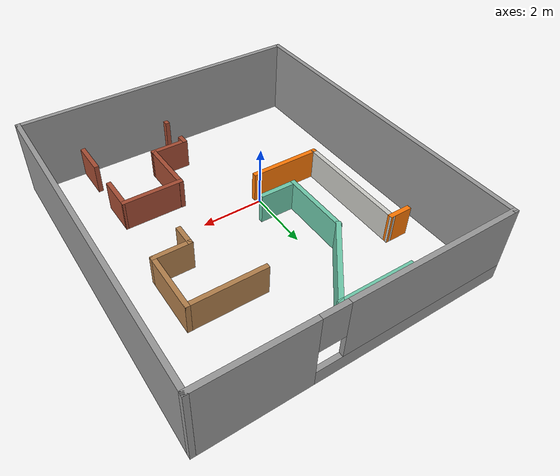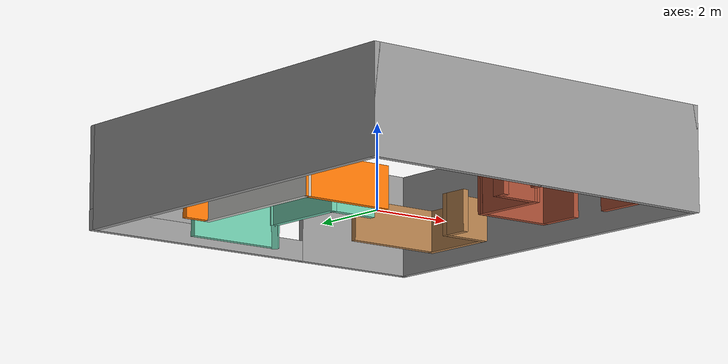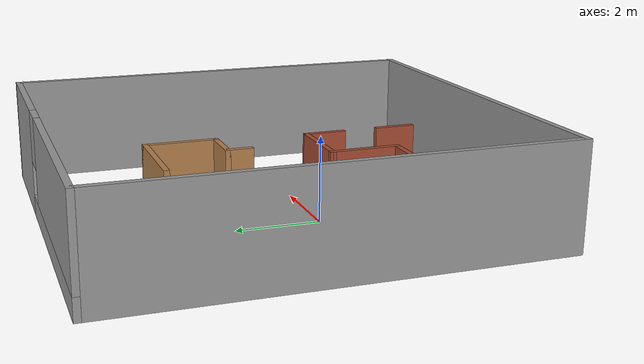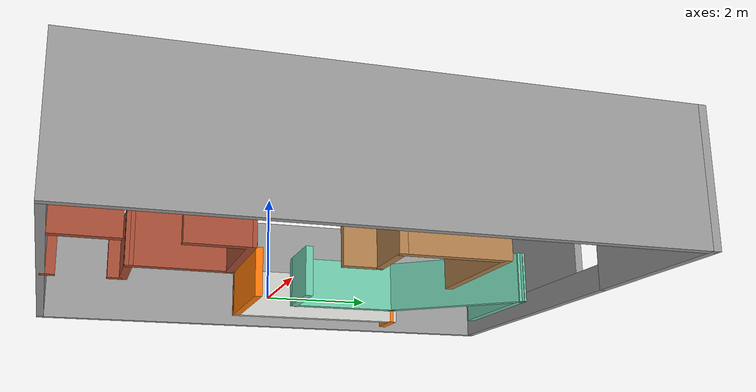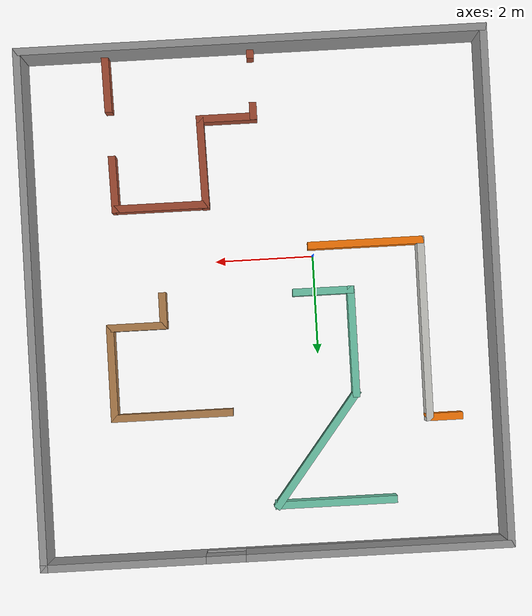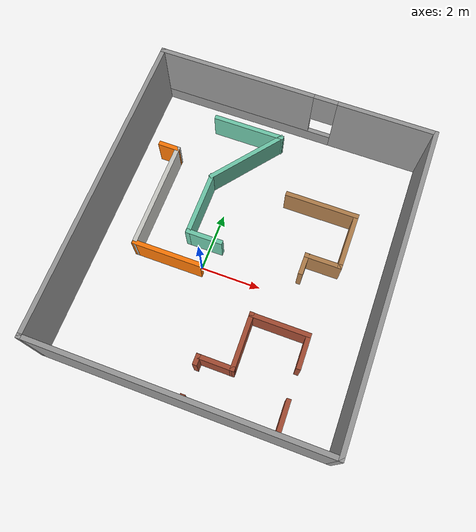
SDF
<?xml version='1.0'?>
<sdf version='1.6'>
  <model name='closer'>
    <pose frame=''>1.0586 0.824304 0 0 -0 0</pose>
    <link name='Wall_10'>
      <collision name='Wall_10_Collision'>
        <geometry>
          <box>
            <size>2.27906 0.15 1</size>
          </box>
        </geometry>
        <pose frame=''>0 0 0.5 0 -0 0</pose>
      </collision>
      <visual name='Wall_10_Visual'>
        <pose frame=''>0 0 0.5 0 -0 0</pose>
        <geometry>
          <box>
            <size>2.27906 0.15 1</size>
          </box>
        </geometry>
        <material>
          <script>
            <uri>file://media/materials/scripts/gazebo.material</uri>
            <name>Gazebo/Grey</name>
          </script>
          <ambient>0.435294 0.796078 0.67451 1</ambient>
        </material>
        <meta>
          <layer>0</layer>
        </meta>
      </visual>
      <pose frame=''>-1.7886 0.973356 0 0 0 -1.5708</pose>
    </link>
    <link name='Wall_11'>
      <collision name='Wall_11_Collision'>
        <geometry>
          <box>
            <size>1.25 0.15 1</size>
          </box>
        </geometry>
        <pose frame=''>0 0 0.5 0 -0 0</pose>
      </collision>
      <visual name='Wall_11_Visual'>
        <pose frame=''>0 0 0.5 0 -0 0</pose>
        <geometry>
          <box>
            <size>1.25 0.15 1</size>
          </box>
        </geometry>
        <material>
          <script>
            <uri>file://media/materials/scripts/gazebo.material</uri>
            <name>Gazebo/Grey</name>
          </script>
          <ambient>0.435294 0.796078 0.67451 1</ambient>
        </material>
        <meta>
          <layer>0</layer>
        </meta>
      </visual>
      <pose frame=''>-1.22522 -0.090985 0 0 -0 0</pose>
    </link>
    <link name='Wall_13'>
      <collision name='Wall_13_Collision'>
        <geometry>
          <box>
            <size>2.5 0.15 1</size>
          </box>
        </geometry>
        <pose frame=''>0 0 0.5 0 -0 0</pose>
      </collision>
      <visual name='Wall_13_Visual'>
        <pose frame=''>0 0 0.5 0 -0 0</pose>
        <geometry>
          <box>
            <size>2.5 0.15 1</size>
          </box>
        </geometry>
        <material>
          <script>
            <uri>file://media/materials/scripts/gazebo.material</uri>
            <name>Gazebo/Wood</name>
          </script>
          <ambient>1 1 1 1</ambient>
        </material>
        <meta>
          <layer>0</layer>
        </meta>
      </visual>
      <pose frame=''>1.9954 2.2857 0 0 -0 0</pose>
    </link>
    <link name='Wall_14'>
      <collision name='Wall_14_Collision'>
        <geometry>
          <box>
            <size>2 0.15 1</size>
          </box>
        </geometry>
        <pose frame=''>0 0 0.5 0 -0 0</pose>
      </collision>
      <visual name='Wall_14_Visual'>
        <pose frame=''>0 0 0.5 0 -0 0</pose>
        <geometry>
          <box>
            <size>2 0.15 1</size>
          </box>
        </geometry>
        <material>
          <script>
            <uri>file://media/materials/scripts/gazebo.material</uri>
            <name>Gazebo/Wood</name>
          </script>
          <ambient>1 1 1 1</ambient>
        </material>
        <meta>
          <layer>0</layer>
        </meta>
      </visual>
      <pose frame=''>3.1704 1.3607 0 0 0 -1.5708</pose>
    </link>
    <link name='Wall_15'>
      <collision name='Wall_15_Collision'>
        <geometry>
          <box>
            <size>1.25 0.15 1</size>
          </box>
        </geometry>
        <pose frame=''>0 0 0.5 0 -0 0</pose>
      </collision>
      <visual name='Wall_15_Visual'>
        <pose frame=''>0 0 0.5 0 -0 0</pose>
        <geometry>
          <box>
            <size>1.25 0.15 1</size>
          </box>
        </geometry>
        <material>
          <script>
            <uri>file://media/materials/scripts/gazebo.material</uri>
            <name>Gazebo/Wood</name>
          </script>
          <ambient>1 1 1 1</ambient>
        </material>
        <meta>
          <layer>0</layer>
        </meta>
      </visual>
      <pose frame=''>2.6204 0.435696 0 0 -0 3.14159</pose>
    </link>
    <link name='Wall_16'>
      <collision name='Wall_16_Collision'>
        <geometry>
          <box>
            <size>0.75 0.15 1</size>
          </box>
        </geometry>
        <pose frame=''>0 0 0.5 0 -0 0</pose>
      </collision>
      <visual name='Wall_16_Visual'>
        <pose frame=''>0 0 0.5 0 -0 0</pose>
        <geometry>
          <box>
            <size>0.75 0.15 1</size>
          </box>
        </geometry>
        <material>
          <script>
            <uri>file://media/materials/scripts/gazebo.material</uri>
            <name>Gazebo/Wood</name>
          </script>
          <ambient>1 1 1 1</ambient>
        </material>
        <meta>
          <layer>0</layer>
        </meta>
      </visual>
      <pose frame=''>2.0704 0.135696 0 0 0 -1.5708</pose>
    </link>
    <link name='Wall_18'>
      <pose frame=''>0.005566 -4.43344 0 0 -0 1.5708</pose>
      <visual name='Wall_18_Visual_0'>
        <pose frame=''>-0.628073 0 0.5 0 -0 0</pose>
        <geometry>
          <box>
            <size>0.269853 0.15 1</size>
          </box>
        </geometry>
        <material>
          <script>
            <uri>file://media/materials/scripts/gazebo.material</uri>
            <name>Gazebo/Bricks</name>
          </script>
          <ambient>1 1 1 1</ambient>
        </material>
        <meta>
          <layer>0</layer>
        </meta>
      </visual>
      <collision name='Wall_18_Collision_0'>
        <geometry>
          <box>
            <size>0.269853 0.15 1</size>
          </box>
        </geometry>
        <pose frame=''>-0.628073 0 0.5 0 -0 0</pose>
      </collision>
      <visual name='Wall_18_Visual_1'>
        <pose frame=''>0.584927 0 0.5 0 -0 0</pose>
        <geometry>
          <box>
            <size>0.356147 0.15 1</size>
          </box>
        </geometry>
        <material>
          <script>
            <uri>file://media/materials/scripts/gazebo.material</uri>
            <name>Gazebo/Bricks</name>
          </script>
          <ambient>1 1 1 1</ambient>
        </material>
        <meta>
          <layer>0</layer>
        </meta>
      </visual>
      <collision name='Wall_18_Collision_1'>
        <geometry>
          <box>
            <size>0.356147 0.15 1</size>
          </box>
        </geometry>
        <pose frame=''>0.584927 0 0.5 0 -0 0</pose>
      </collision>
    </link>
    <link name='Wall_19'>
      <collision name='Wall_19_Collision'>
        <geometry>
          <box>
            <size>1.25 0.15 1</size>
          </box>
        </geometry>
        <pose frame=''>0 0 0.5 0 -0 0</pose>
      </collision>
      <visual name='Wall_19_Visual'>
        <pose frame=''>0 0 0.5 0 -0 0</pose>
        <geometry>
          <box>
            <size>1.25 0.15 1</size>
          </box>
        </geometry>
        <material>
          <script>
            <uri>file://media/materials/scripts/gazebo.material</uri>
            <name>Gazebo/Bricks</name>
          </script>
          <ambient>1 1 1 1</ambient>
        </material>
        <meta>
          <layer>0</layer>
        </meta>
      </visual>
      <pose frame=''>0.555566 -3.73883 0 0 -0 0</pose>
    </link>
    <link name='Wall_2'>
      <collision name='Wall_2_Collision'>
        <geometry>
          <box>
            <size>9.5 0.15 2.5</size>
          </box>
        </geometry>
        <pose frame=''>0 0 1.25 0 -0 0</pose>
      </collision>
      <visual name='Wall_2_Visual'>
        <pose frame=''>0 0 1.25 0 -0 0</pose>
        <geometry>
          <box>
            <size>9.5 0.15 2.5</size>
          </box>
        </geometry>
        <material>
          <script>
            <uri>file://media/materials/scripts/gazebo.material</uri>
            <name>Gazebo/Grey</name>
          </script>
          <ambient>1 1 1 1</ambient>
        </material>
        <meta>
          <layer>0</layer>
        </meta>
      </visual>
      <pose frame=''>0 -5.175 0 0 -0 0</pose>
    </link>
    <link name='Wall_20'>
      <collision name='Wall_20_Collision'>
        <geometry>
          <box>
            <size>1.9061 0.15 1</size>
          </box>
        </geometry>
        <pose frame=''>0 0 0.5 0 -0 0</pose>
      </collision>
      <visual name='Wall_20_Visual'>
        <pose frame=''>0 0 0.5 0 -0 0</pose>
        <geometry>
          <box>
            <size>1.9061 0.15 1</size>
          </box>
        </geometry>
        <material>
          <script>
            <uri>file://media/materials/scripts/gazebo.material</uri>
            <name>Gazebo/Bricks</name>
          </script>
          <ambient>1 1 1 1</ambient>
        </material>
        <meta>
          <layer>0</layer>
        </meta>
      </visual>
      <pose frame=''>1.09121 -2.86089 0 0 -0 1.58715</pose>
    </link>
    <link name='Wall_21'>
      <collision name='Wall_21_Collision'>
        <geometry>
          <box>
            <size>2 0.15 1</size>
          </box>
        </geometry>
        <pose frame=''>0 0 0.5 0 -0 0</pose>
      </collision>
      <visual name='Wall_21_Visual'>
        <pose frame=''>0 0 0.5 0 -0 0</pose>
        <geometry>
          <box>
            <size>2 0.15 1</size>
          </box>
        </geometry>
        <material>
          <script>
            <uri>file://media/materials/scripts/gazebo.material</uri>
            <name>Gazebo/Bricks</name>
          </script>
          <ambient>1 1 1 1</ambient>
        </material>
        <meta>
          <layer>0</layer>
        </meta>
      </visual>
      <pose frame=''>2.00185 -1.99065 0 0 -0 0</pose>
    </link>
    <link name='Wall_22'>
      <pose frame=''>2.95285 -3.55741 0 0 0 -1.5542</pose>
      <visual name='Wall_22_Visual_0'>
        <pose frame=''>-1.059 0 0.5 0 -0 0</pose>
        <geometry>
          <box>
            <size>1.16595 0.15 1</size>
          </box>
        </geometry>
        <material>
          <script>
            <uri>file://media/materials/scripts/gazebo.material</uri>
            <name>Gazebo/Bricks</name>
          </script>
          <ambient>1 1 1 1</ambient>
        </material>
        <meta>
          <layer>0</layer>
        </meta>
      </visual>
      <collision name='Wall_22_Collision_0'>
        <geometry>
          <box>
            <size>1.16595 0.15 1</size>
          </box>
        </geometry>
        <pose frame=''>-1.059 0 0.5 0 -0 0</pose>
      </collision>
      <visual name='Wall_22_Visual_1'>
        <pose frame=''>1.03297 0 0.5 0 -0 0</pose>
        <geometry>
          <box>
            <size>1.218 0.15 1</size>
          </box>
        </geometry>
        <material>
          <script>
            <uri>file://media/materials/scripts/gazebo.material</uri>
            <name>Gazebo/Bricks</name>
          </script>
          <ambient>1 1 1 1</ambient>
        </material>
        <meta>
          <layer>0</layer>
        </meta>
      </visual>
      <collision name='Wall_22_Collision_1'>
        <geometry>
          <box>
            <size>1.218 0.15 1</size>
          </box>
        </geometry>
        <pose frame=''>1.03297 0 0.5 0 -0 0</pose>
      </collision>
    </link>
    <link name='Wall_24'>
      <collision name='Wall_24_Collision'>
        <geometry>
          <box>
            <size>0.75 0.15 1</size>
          </box>
        </geometry>
        <pose frame=''>0 0 0.5 0 -0 0</pose>
      </collision>
      <visual name='Wall_24_Visual'>
        <pose frame=''>0 0 0.5 0 -0 0</pose>
        <geometry>
          <box>
            <size>0.75 0.15 1</size>
          </box>
        </geometry>
        <material>
          <script>
            <uri>file://media/materials/scripts/gazebo.material</uri>
            <name>Gazebo/Grey</name>
          </script>
          <ambient>0.996078 0.47451 0.0196078 1</ambient>
        </material>
        <meta>
          <layer>0</layer>
        </meta>
      </visual>
      <pose frame=''>-3.5616 2.6027 0 0 -0 0</pose>
    </link>
    <link name='Wall_25'>
      <collision name='Wall_25_Collision'>
        <geometry>
          <box>
            <size>3.78461 0.15 1</size>
          </box>
        </geometry>
        <pose frame=''>0 0 0.5 0 -0 0</pose>
      </collision>
      <visual name='Wall_25_Visual'>
        <pose frame=''>0 0 0.5 0 -0 0</pose>
        <geometry>
          <box>
            <size>3.78461 0.15 1</size>
          </box>
        </geometry>
        <material>
          <script>
            <uri>file://media/materials/scripts/gazebo.material</uri>
            <name>Gazebo/CeilingTiled</name>
          </script>
          <ambient>0.996078 0.47451 0.0196078 1</ambient>
        </material>
        <meta>
          <layer>0</layer>
        </meta>
      </visual>
      <pose frame=''>-3.26362 0.785392 0 0 0 -1.57191</pose>
    </link>
    <link name='Wall_26'>
      <collision name='Wall_26_Collision'>
        <geometry>
          <box>
            <size>2.36766 0.15 1</size>
          </box>
        </geometry>
        <pose frame=''>0 0 0.5 0 -0 0</pose>
      </collision>
      <visual name='Wall_26_Visual'>
        <pose frame=''>0 0 0.5 0 -0 0</pose>
        <geometry>
          <box>
            <size>2.36766 0.15 1</size>
          </box>
        </geometry>
        <material>
          <script>
            <uri>file://media/materials/scripts/gazebo.material</uri>
            <name>Gazebo/Grey</name>
          </script>
          <ambient>0.996078 0.47451 0.0196078 1</ambient>
        </material>
        <meta>
          <layer>0</layer>
        </meta>
      </visual>
      <pose frame=''>-2.14343 -1.03126 0 0 -0 0.000586</pose>
    </link>
    <link name='Wall_3'>
      <collision name='Wall_3_Collision'>
        <geometry>
          <box>
            <size>10.5 0.15 2.5</size>
          </box>
        </geometry>
        <pose frame=''>0 0 1.25 0 -0 0</pose>
      </collision>
      <visual name='Wall_3_Visual'>
        <pose frame=''>0 0 1.25 0 -0 0</pose>
        <geometry>
          <box>
            <size>10.5 0.15 2.5</size>
          </box>
        </geometry>
        <material>
          <script>
            <uri>file://media/materials/scripts/gazebo.material</uri>
            <name>Gazebo/Grey</name>
          </script>
          <ambient>1 1 1 1</ambient>
        </material>
        <meta>
          <layer>0</layer>
        </meta>
      </visual>
      <pose frame=''>4.675 0 0 0 -0 1.5708</pose>
    </link>
    <link name='Wall_4'>
      <pose frame=''>0 5.175 0 0 -0 3.14159</pose>
      <visual name='Wall_4_Visual_0'>
        <pose frame=''>-3.09119 0 1.25 0 -0 0</pose>
        <geometry>
          <box>
            <size>3.31762 0.15 2.5</size>
          </box>
        </geometry>
        <material>
          <script>
            <uri>file://media/materials/scripts/gazebo.material</uri>
            <name>Gazebo/Grey</name>
          </script>
          <ambient>1 1 1 1</ambient>
        </material>
        <meta>
          <layer>0</layer>
        </meta>
      </visual>
      <collision name='Wall_4_Collision_0'>
        <geometry>
          <box>
            <size>3.31762 0.15 2.5</size>
          </box>
        </geometry>
        <pose frame=''>-3.09119 0 1.25 0 -0 0</pose>
      </collision>
      <visual name='Wall_4_Visual_1'>
        <pose frame=''>1.65881 0 0.25 0 -0 0</pose>
        <geometry>
          <box>
            <size>6.18238 0.15 0.5</size>
          </box>
        </geometry>
        <material>
          <script>
            <uri>file://media/materials/scripts/gazebo.material</uri>
            <name>Gazebo/Grey</name>
          </script>
          <ambient>1 1 1 1</ambient>
        </material>
        <meta>
          <layer>0</layer>
        </meta>
      </visual>
      <collision name='Wall_4_Collision_1'>
        <geometry>
          <box>
            <size>6.18238 0.15 0.5</size>
          </box>
        </geometry>
        <pose frame=''>1.65881 0 0.25 0 -0 0</pose>
      </collision>
      <visual name='Wall_4_Visual_2'>
        <pose frame=''>2.05881 0 1.5 0 -0 0</pose>
        <geometry>
          <box>
            <size>5.38238 0.15 2</size>
          </box>
        </geometry>
        <material>
          <script>
            <uri>file://media/materials/scripts/gazebo.material</uri>
            <name>Gazebo/Grey</name>
          </script>
          <ambient>1 1 1 1</ambient>
        </material>
        <meta>
          <layer>0</layer>
        </meta>
      </visual>
      <collision name='Wall_4_Collision_2'>
        <geometry>
          <box>
            <size>5.38238 0.15 2</size>
          </box>
        </geometry>
        <pose frame=''>2.05881 0 1.5 0 -0 0</pose>
      </collision>
      <visual name='Wall_4_Visual_3'>
        <pose frame=''>-1.03238 0 1.9 0 -0 0</pose>
        <geometry>
          <box>
            <size>0.8 0.15 1.2</size>
          </box>
        </geometry>
        <material>
          <script>
            <uri>file://media/materials/scripts/gazebo.material</uri>
            <name>Gazebo/Grey</name>
          </script>
          <ambient>1 1 1 1</ambient>
        </material>
        <meta>
          <layer>0</layer>
        </meta>
      </visual>
      <collision name='Wall_4_Collision_3'>
        <geometry>
          <box>
            <size>0.8 0.15 1.2</size>
          </box>
        </geometry>
        <pose frame=''>-1.03238 0 1.9 0 -0 0</pose>
      </collision>
    </link>
    <link name='Wall_6'>
      <collision name='Wall_6_Collision'>
        <geometry>
          <box>
            <size>10.5 0.15 2.5</size>
          </box>
        </geometry>
        <pose frame=''>0 0 1.25 0 -0 0</pose>
      </collision>
      <visual name='Wall_6_Visual'>
        <pose frame=''>0 0 1.25 0 -0 0</pose>
        <geometry>
          <box>
            <size>10.5 0.15 2.5</size>
          </box>
        </geometry>
        <material>
          <script>
            <uri>file://media/materials/scripts/gazebo.material</uri>
            <name>Gazebo/Grey</name>
          </script>
          <ambient>1 1 1 1</ambient>
        </material>
        <meta>
          <layer>0</layer>
        </meta>
      </visual>
      <pose frame=''>-4.675 0 0 0 0 -1.5708</pose>
    </link>
    <link name='Wall_8'>
      <collision name='Wall_8_Collision'>
        <geometry>
          <box>
            <size>2.5 0.15 1</size>
          </box>
        </geometry>
        <pose frame=''>0 0 0.5 0 -0 0</pose>
      </collision>
      <visual name='Wall_8_Visual'>
        <pose frame=''>0 0 0.5 0 -0 0</pose>
        <geometry>
          <box>
            <size>2.5 0.15 1</size>
          </box>
        </geometry>
        <material>
          <script>
            <uri>file://media/materials/scripts/gazebo.material</uri>
            <name>Gazebo/Grey</name>
          </script>
          <ambient>0.435294 0.796078 0.67451 1</ambient>
        </material>
        <meta>
          <layer>0</layer>
        </meta>
      </visual>
      <pose frame=''>-1.26049 4.2357 0 0 -0 0</pose>
    </link>
    <link name='Wall_9'>
      <collision name='Wall_9_Collision'>
        <geometry>
          <box>
            <size>2.93061 0.15 1</size>
          </box>
        </geometry>
        <pose frame=''>0 0 0.5 0 -0 0</pose>
      </collision>
      <visual name='Wall_9_Visual'>
        <pose frame=''>0 0 0.5 0 -0 0</pose>
        <geometry>
          <box>
            <size>2.93061 0.15 1</size>
          </box>
        </geometry>
        <material>
          <script>
            <uri>file://media/materials/scripts/gazebo.material</uri>
            <name>Gazebo/Grey</name>
          </script>
          <ambient>0.435294 0.796078 0.67451 1</ambient>
        </material>
        <meta>
          <layer>0</layer>
        </meta>
      </visual>
      <pose frame=''>-0.937045 3.1367 0 0 0 -2.23001</pose>
    </link>
    <static>1</static>
  </model>
</sdf>
